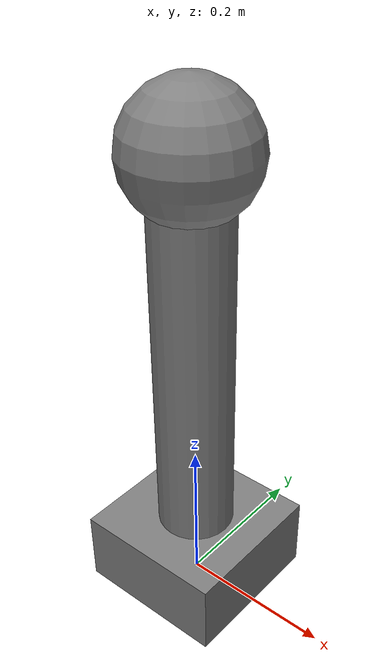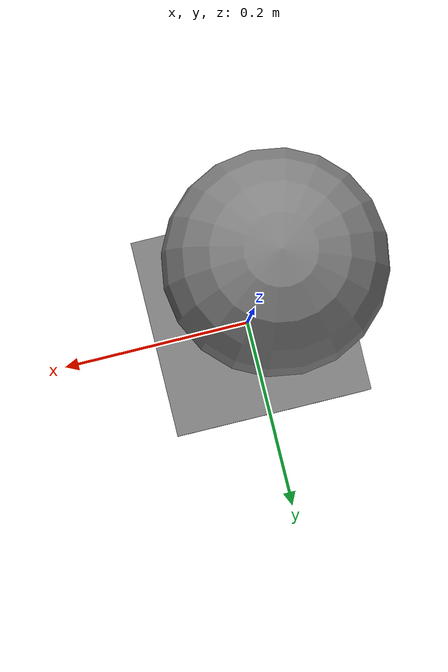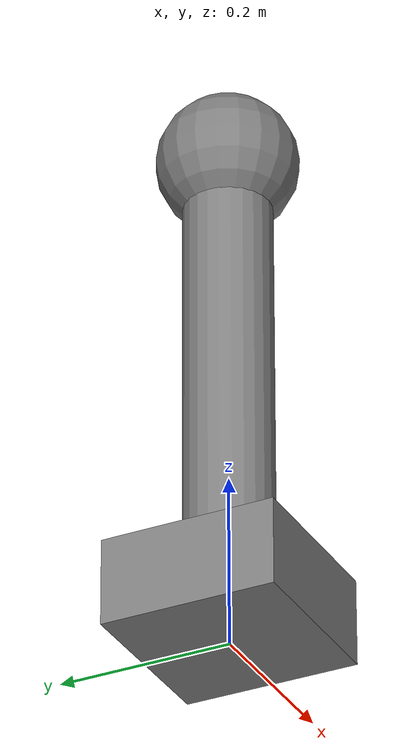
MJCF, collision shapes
<mujoco model="robot">
  <!-- robot-diff convention: collision and visual geoms must be denoted with classes -->
  <default>
    <default class="collision">
      <geom group="0"/>
    </default>
    <default class="visual">
      <geom contype="0" conaffinity="0" group="1"/>
    </default>
  </default>

  <asset>
    <material name="blue" rgba="0.0 0.0 1.0 1.0"/>
    <material name="red" rgba="1.0 0.0 0.0 1.0"/>
    <texture name="metal_texture" type="2d" file="textures/metal.png"/>
    <material name="metal" texture="metal_texture"/>
    <mesh name="link2_mesh" file="meshes/link2.obj" scale="1.0 1.0 1.0"/>
  </asset>

  <worldbody>
    <body name="base_link" pos="0 0 0">
      <inertial pos="0 0 0.05" mass="1.0" diaginertia="0.01 0.01 0.01"/>
      <!-- MJCF uses half-extents: size="0.1 0.1 0.05" for 0.2x0.2x0.1 box -->
      <geom type="box" size="0.1 0.1 0.05" pos="0 0 0.05" class="collision"/>
      <!-- robot-diff convention: material attribute on geom, not mesh -->
      <geom type="box" size="0.1 0.1 0.05" pos="0 0 0.05" material="blue" class="visual"/>

      <body name="link1" pos="0 0 0.1">
        <inertial pos="0 0 0.25" mass="0.5" diaginertia="0.005 0.005 0.001"/>
        <joint name="joint1" type="hinge" axis="0 0 1" range="-1.57 1.57"/>
        <!-- MJCF cylinder size: (radius, half-length) = (0.05, 0.25) for length=0.5 -->
        <geom type="cylinder" size="0.05 0.25" pos="0 0 0.25" class="collision"/>
        <geom type="cylinder" size="0.05 0.25" pos="0 0 0.25" material="red" class="visual"/>

        <body name="link2" pos="0 0 0.5">
          <inertial pos="0 0 0" mass="0.3" diaginertia="0.001 0.001 0.001"/>
          <joint name="joint2" type="slide" axis="0 0 1" range="0 0.3"/>
          <geom type="sphere" size="0.08" pos="0 0 0" class="collision"/>
          <geom type="mesh" mesh="link2_mesh" pos="0 0 0" material="metal" class="visual"/>
        </body>
      </body>
    </body>
  </worldbody>
</mujoco>
